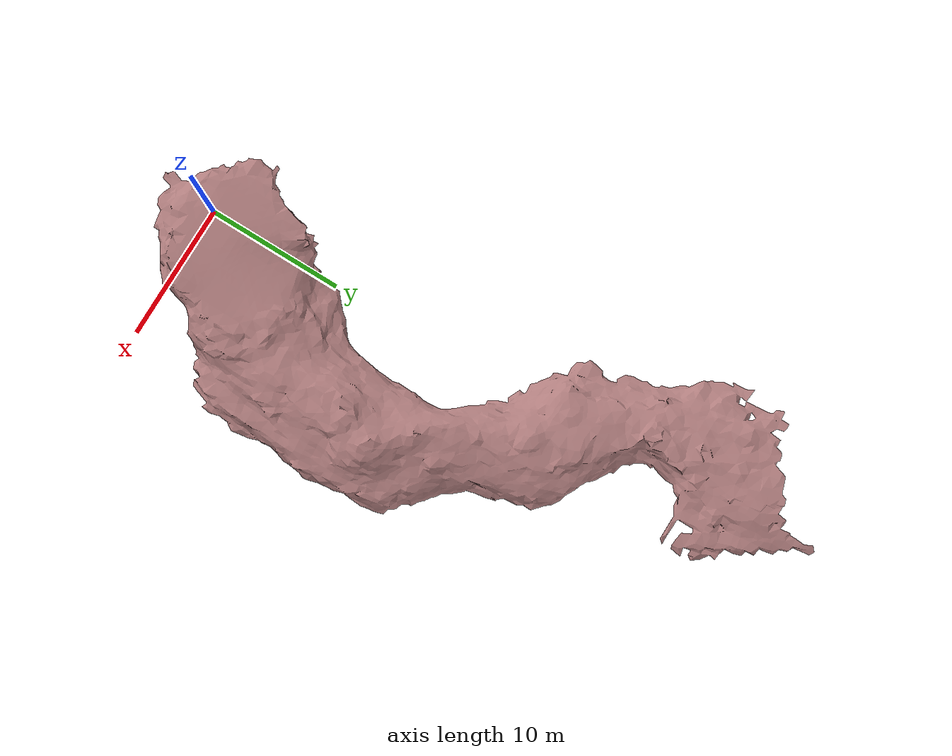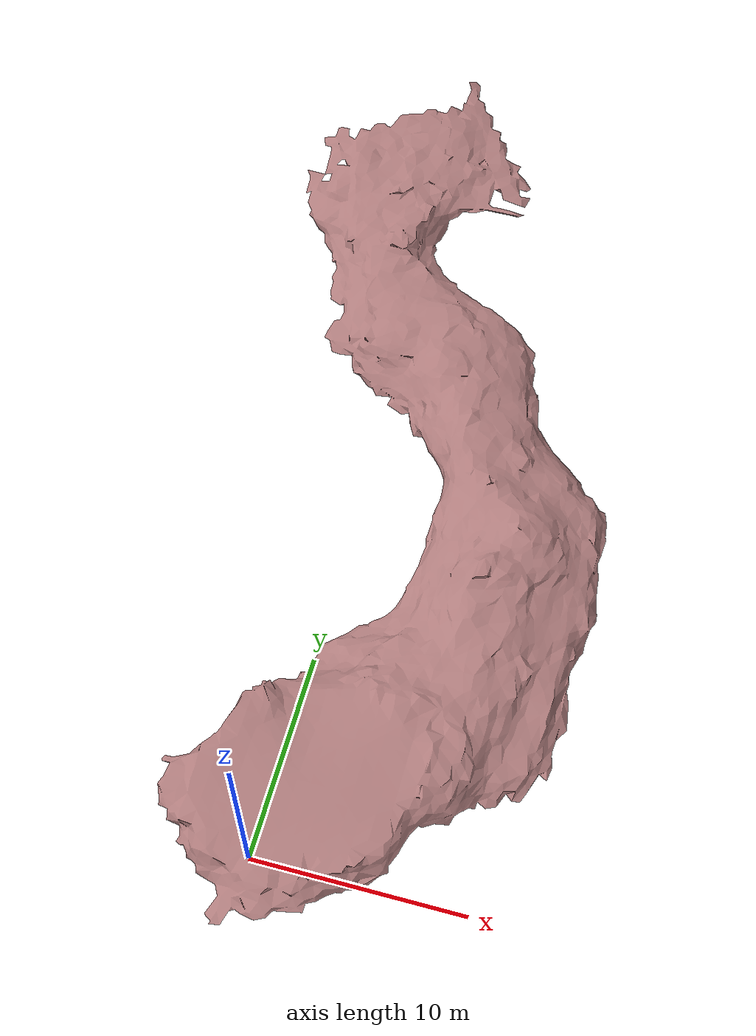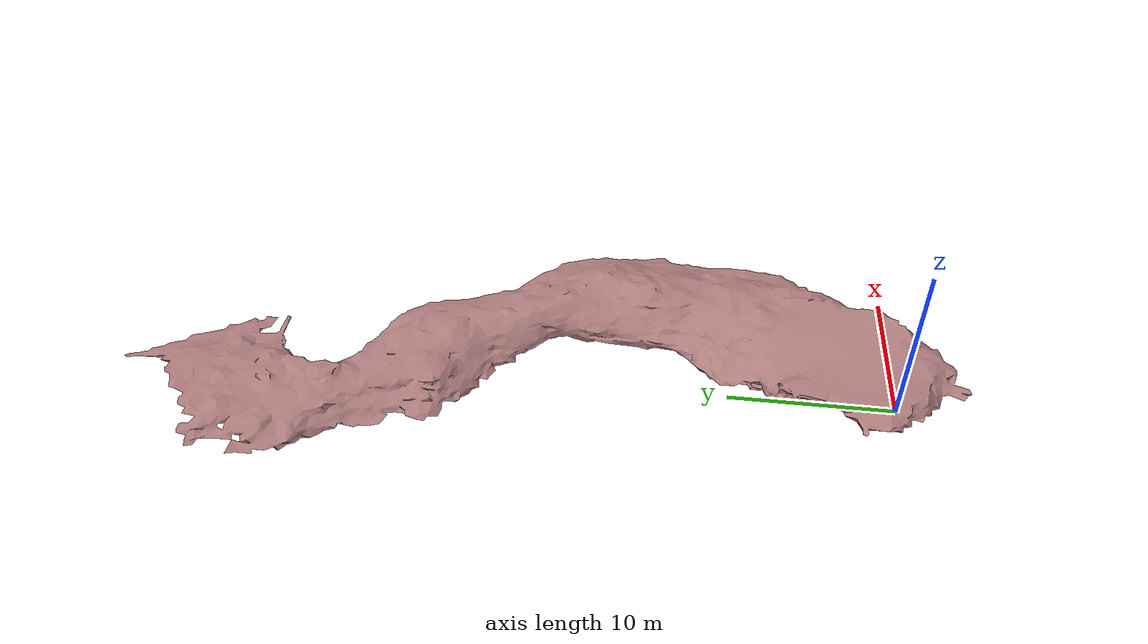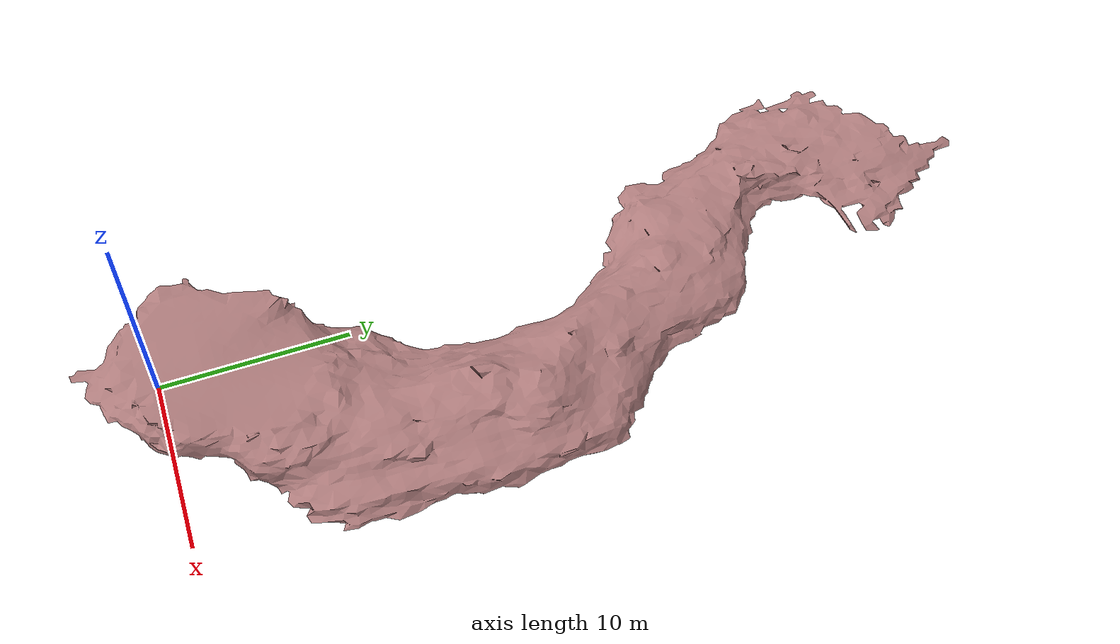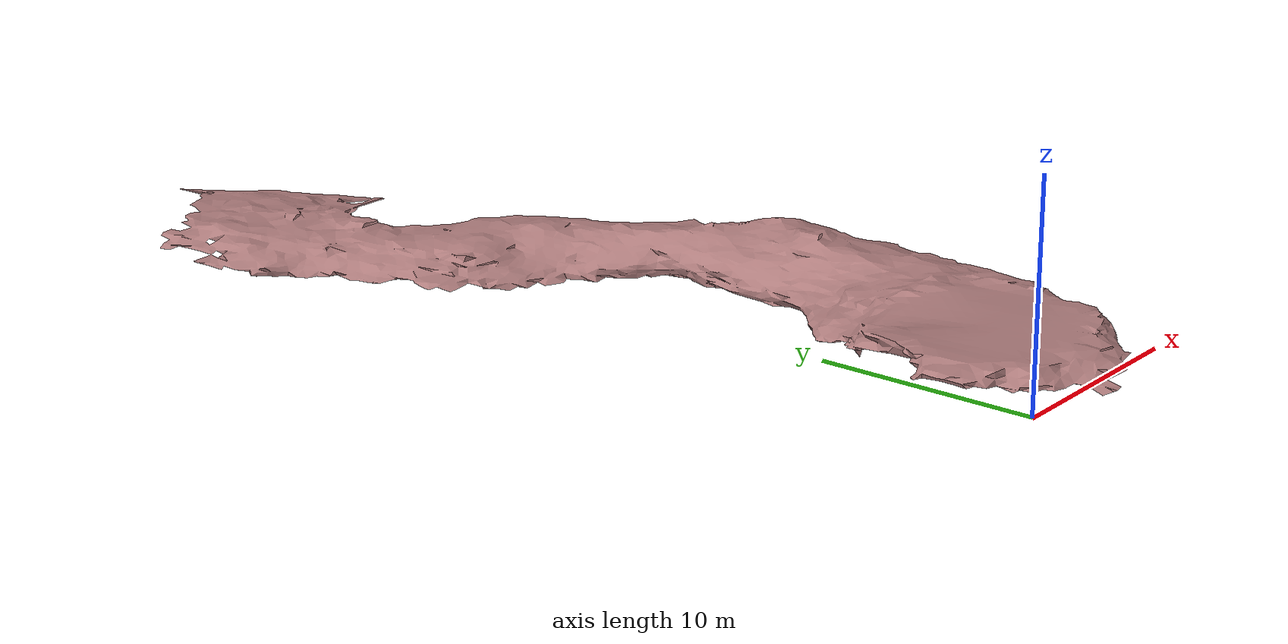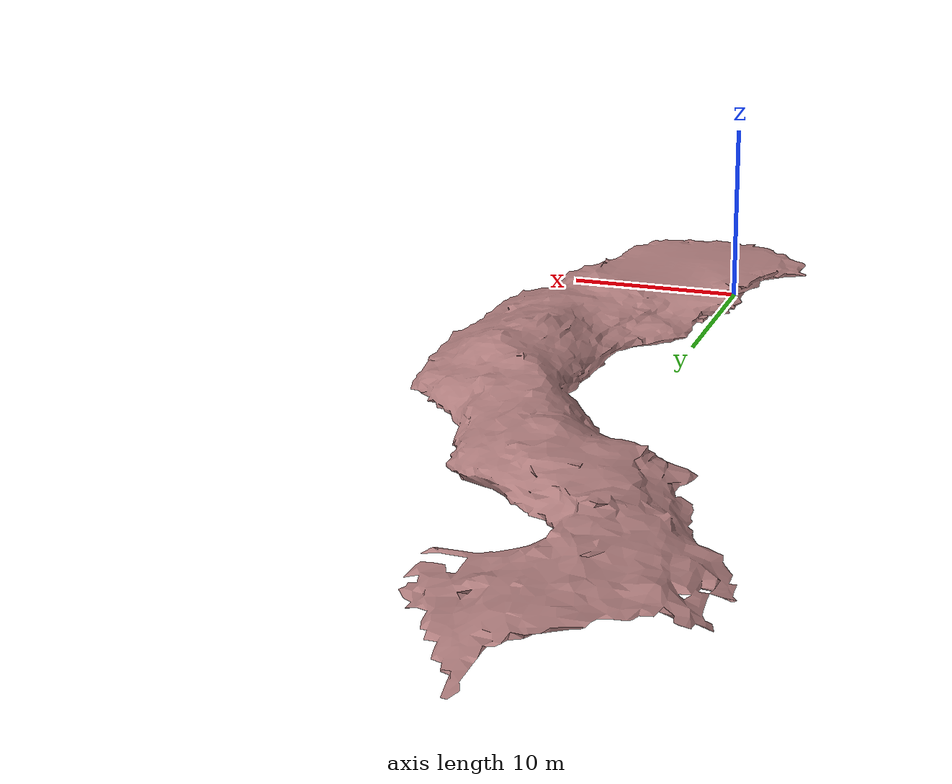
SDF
<sdf version="1.6">
 <world name="default">
  <light name="sun" type="directional">
   <pose>0 0 10 0 -0 0</pose>
   <diffuse>0.8 0.8 0.8 1</diffuse>
   <specular>0.1 0.1 0.1 1</specular>
   <attenuation>
    <range>1000</range>
    <constant>0.9</constant>
    <linear>0.01</linear>
    <quadratic>0.001</quadratic>
   </attenuation>
   <direction>-0.5 0.5 -1</direction>
  </light>
  <gravity>0 0 -9.8</gravity>
  <magnetic_field>6e-06 2.3e-05 -4.2e-05</magnetic_field>
  <atmosphere type="adiabatic"/>
  <physics name="default_physics" default="0" type="ode">
   <max_step_size>0.001</max_step_size>
   <real_time_factor>1</real_time_factor>
   <real_time_update_rate>1000</real_time_update_rate>
  </physics>
  <scene><ambient>0.4 0.4 0.4 1</ambient><background>0.7 0.7 0.7 1</background><shadows>1</shadows></scene>
  <spherical_coordinates>
   <surface_model>EARTH_WGS84</surface_model>
   <latitude_deg>0</latitude_deg>
   <longitude_deg>0</longitude_deg>
   <elevation>0</elevation>
   <heading_deg>0</heading_deg>
  </spherical_coordinates>
  <model name="indian_tunnel">
   <link name="indian_tunnel_link">
    <inertial>
     <mass>1</mass>
     <inertia><ixx>1</ixx><ixy>0</ixy><ixz>0</ixz><iyy>1</iyy><iyz>0</iyz><izz>1</izz></inertia>
    </inertial>
    <visual name="indian_tunnel_visual">
     <geometry><mesh><uri>model://indian_tunnel/indian_tunnel.dae</uri><scale>0.5 0.5 0.2</scale></mesh></geometry>
     <cast_shadows>0</cast_shadows>
     <material>
      <ambient>0.5 0.3 0.3 1</ambient>
      <diffuse>0.7 0.5 0.5 1</diffuse>
      <specular>0.7 0.5 0.5 1</specular>
      <emissive>0 0 0 1</emissive>
      <script>
       <name>ModelPreview_1::indian_tunnel_link::indian_tunnel_visual_MATERIAL_</name>
       <uri>__default__</uri>
      </script>
      <shader type="vertex"><normal_map>__default__</normal_map></shader>
     </material>
    </visual>
    <collision name="indian_tunnel_collision">
     <geometry>
      <mesh><uri>/home/lilly/.gazebo/models/indian_tunnel/indian_tunnel.dae</uri><scale>0.5 0.5 0.2</scale></mesh>
     </geometry>
     <surface>
      <friction>
       <ode><mu>1</mu><mu2>1</mu2><fdir1>0 0 0</fdir1><slip1>0</slip1><slip2>0</slip2></ode>
       <torsional>
        <coefficient>1</coefficient>
        <patch_radius>0</patch_radius>
        <surface_radius>0</surface_radius>
        <use_patch_radius>1</use_patch_radius>
        <ode><slip>0</slip></ode>
       </torsional>
      </friction>
      <bounce><restitution_coefficient>0</restitution_coefficient><threshold>1e+06</threshold></bounce>
      <contact>
       <collide_without_contact>0</collide_without_contact>
       <collide_without_contact_bitmask>1</collide_without_contact_bitmask>
       <collide_bitmask>1</collide_bitmask>
       <ode>
        <soft_cfm>0</soft_cfm>
        <soft_erp>0.2</soft_erp>
        <kp>1e+13</kp>
        <kd>1</kd>
        <max_vel>0.01</max_vel>
        <min_depth>0</min_depth>
       </ode>
       <bullet>
        <split_impulse>1</split_impulse>
        <split_impulse_penetration_threshold>-0.01</split_impulse_penetration_threshold>
        <soft_cfm>0</soft_cfm>
        <soft_erp>0.2</soft_erp>
        <kp>1e+13</kp>
        <kd>1</kd>
       </bullet>
      </contact>
     </surface>
    </collision>
   </link>
   <static>1</static>
   <pose>0 0 2 0 -0 0</pose>
  </model>
 </world>
</sdf>
